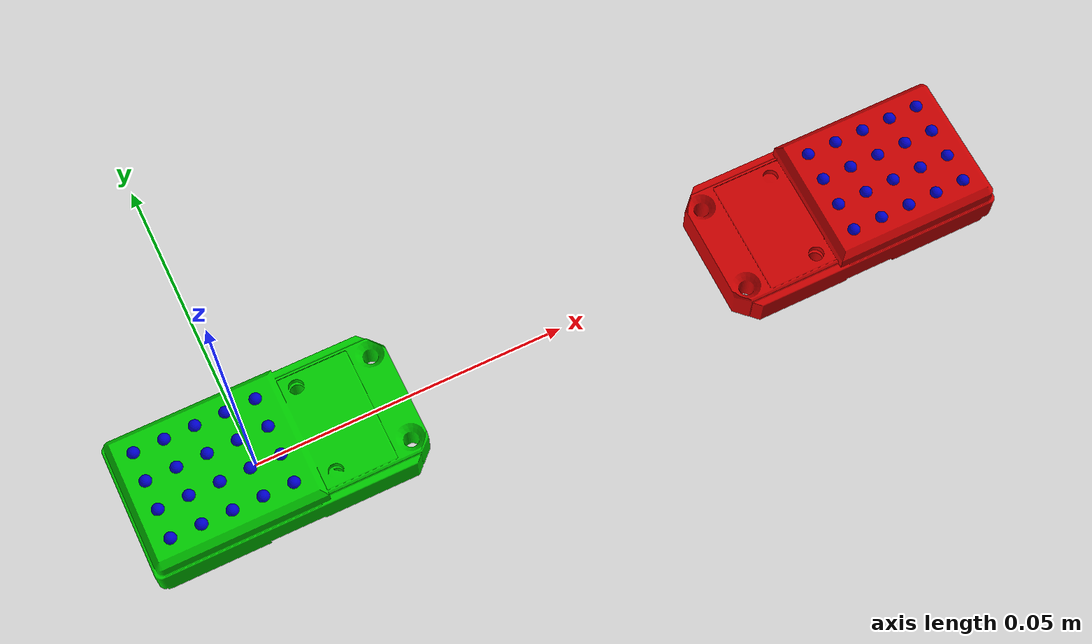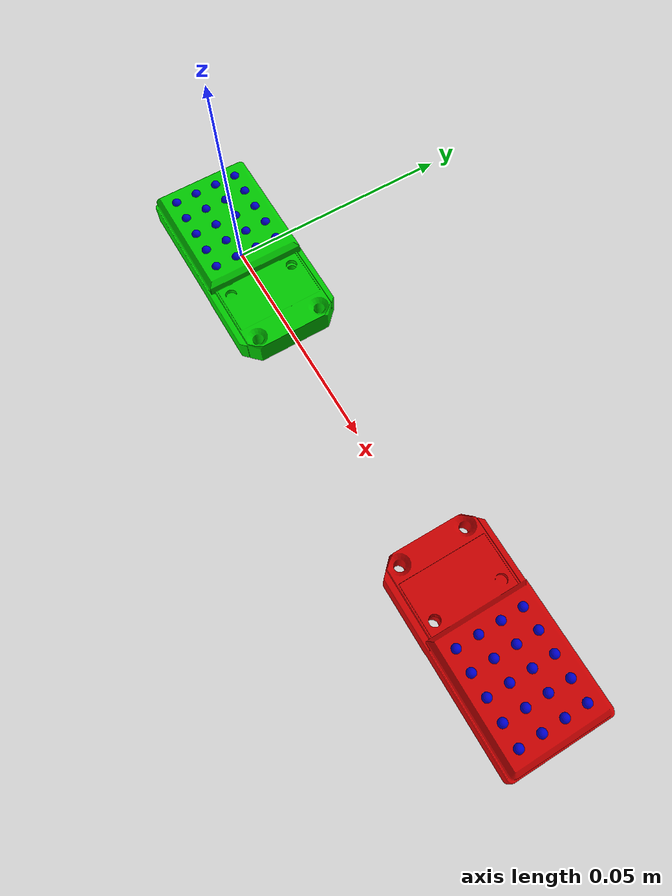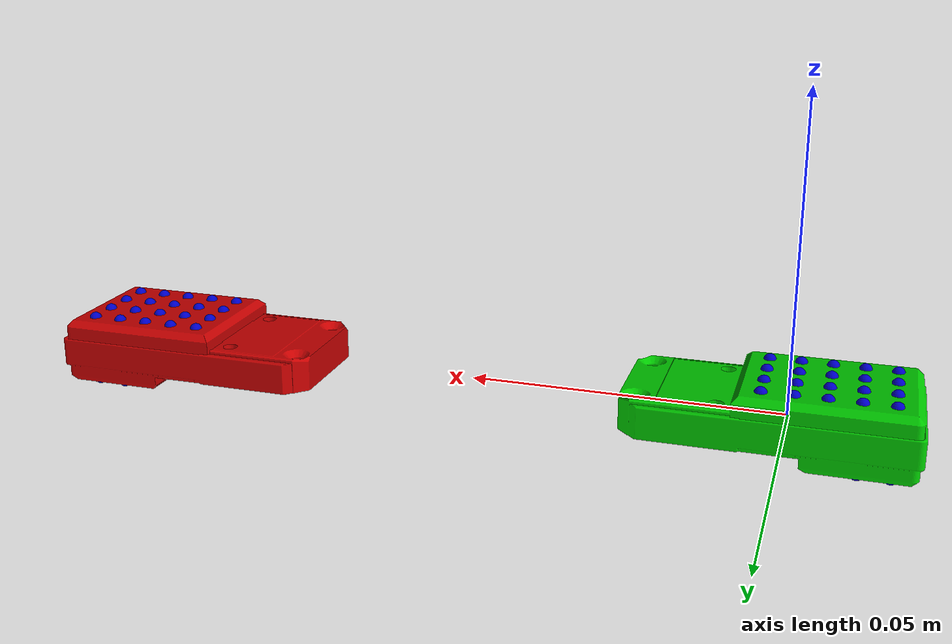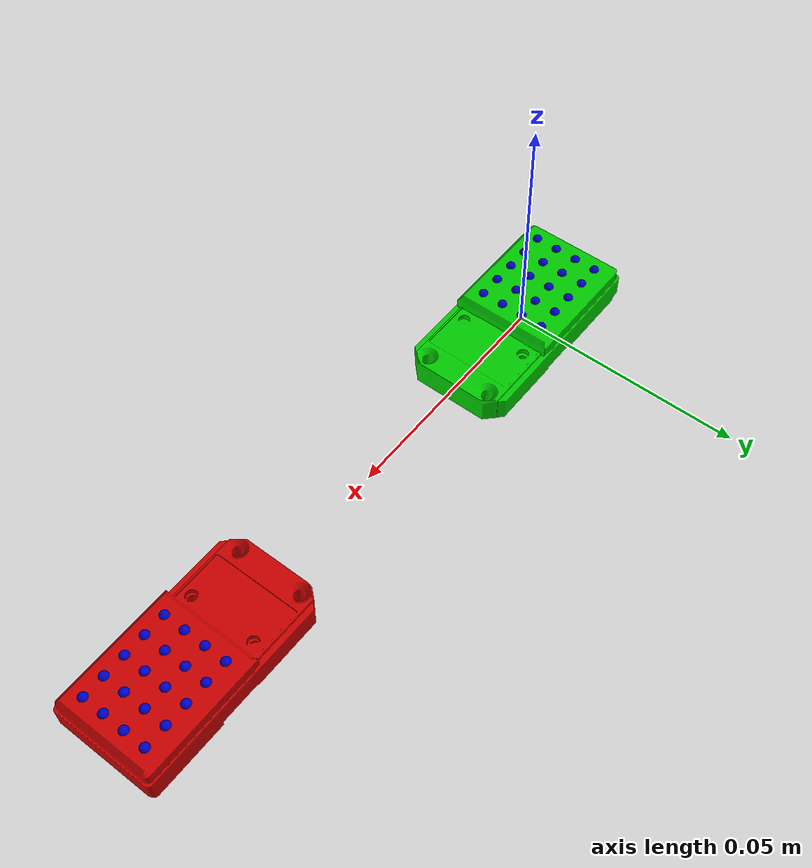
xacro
<?xml version="1.0"?>
<robot xmlns:xacro="http://www.ros.org/wiki/xacro" name="uSPrDS_2modules">
  <xacro:arg name="use_ros2_control" default="false" />
  <xacro:property name="use_ros2_control" value="$(arg use_ros2_control)" />

  <xacro:include filename="$(find xela_models)/urdf/materials.xacro" />
  <xacro:include filename="$(find xela_models)/urdf/taxel_n.xacro" />

  <xacro:include filename="$(find xela_models)/urdf/uSPrDS.xacro" />

	<link name="world" />

	<joint name="fixed" type="fixed">
		<parent link="world" />
		<child link="x_taxel_viz" />
	</joint>

	<link name="x_taxel_viz">
		<visual>
			<origin xyz="0.0 0.0 0.0" rpy="0 0 0"/>
      <geometry>
        <box size="0.001 0.001 0.001"/>
      </geometry>
		</visual>
	</link>

  <xacro:uSPrDS  	sequence="'01'" col="green" parent="x_taxel_viz" taxels="1" x="0" y="0" rz="180" />
  <xacro:uSPrDS  	sequence="'02'" col="red" parent="x_taxel_viz" taxels="1" x="0.1" y="0" />

  <xacro:if value="${use_ros2_control}">
    <ros2_control name="xela_taxel_fake_system" type="system">
      <hardware>
        <plugin>fake_components/GenericSystem</plugin>
      </hardware>
      <joint name="x_taxel_01_uSPrDS_f_01_joint">
        <command_interface name="position"/>
        <state_interface name="position"/>
      </joint>
      <joint name="x_taxel_01_uSPrDS_f_02_joint">
        <command_interface name="position"/>
        <state_interface name="position"/>
      </joint>
      <joint name="x_taxel_01_uSPrDS_f_03_joint">
        <command_interface name="position"/>
        <state_interface name="position"/>
      </joint>
      <joint name="x_taxel_01_uSPrDS_f_04_joint">
        <command_interface name="position"/>
        <state_interface name="position"/>
      </joint>
      <joint name="x_taxel_01_uSPrDS_f_05_joint">
        <command_interface name="position"/>
        <state_interface name="position"/>
      </joint>
      <joint name="x_taxel_01_uSPrDS_f_06_joint">
        <command_interface name="position"/>
        <state_interface name="position"/>
      </joint>
      <joint name="x_taxel_01_uSPrDS_f_07_joint">
        <command_interface name="position"/>
        <state_interface name="position"/>
      </joint>
      <joint name="x_taxel_01_uSPrDS_f_08_joint">
        <command_interface name="position"/>
        <state_interface name="position"/>
      </joint>
      <joint name="x_taxel_01_uSPrDS_f_09_joint">
        <command_interface name="position"/>
        <state_interface name="position"/>
      </joint>
      <joint name="x_taxel_01_uSPrDS_f_10_joint">
        <command_interface name="position"/>
        <state_interface name="position"/>
      </joint>
      <joint name="x_taxel_01_uSPrDS_f_11_joint">
        <command_interface name="position"/>
        <state_interface name="position"/>
      </joint>
      <joint name="x_taxel_01_uSPrDS_f_12_joint">
        <command_interface name="position"/>
        <state_interface name="position"/>
      </joint>
      <joint name="x_taxel_01_uSPrDS_f_13_joint">
        <command_interface name="position"/>
        <state_interface name="position"/>
      </joint>
      <joint name="x_taxel_01_uSPrDS_f_14_joint">
        <command_interface name="position"/>
        <state_interface name="position"/>
      </joint>
      <joint name="x_taxel_01_uSPrDS_f_15_joint">
        <command_interface name="position"/>
        <state_interface name="position"/>
      </joint>
      <joint name="x_taxel_01_uSPrDS_f_16_joint">
        <command_interface name="position"/>
        <state_interface name="position"/>
      </joint>
      <joint name="x_taxel_01_uSPrDS_f_17_joint">
        <command_interface name="position"/>
        <state_interface name="position"/>
      </joint>
      <joint name="x_taxel_01_uSPrDS_f_18_joint">
        <command_interface name="position"/>
        <state_interface name="position"/>
      </joint>
      <joint name="x_taxel_01_uSPrDS_f_19_joint">
        <command_interface name="position"/>
        <state_interface name="position"/>
      </joint>
      <joint name="x_taxel_01_uSPrDS_f_20_joint">
        <command_interface name="position"/>
        <state_interface name="position"/>
      </joint>
      <joint name="x_taxel_01_uSPrDS_r_01_joint">
        <command_interface name="position"/>
        <state_interface name="position"/>
      </joint>
      <joint name="x_taxel_01_uSPrDS_r_02_joint">
        <command_interface name="position"/>
        <state_interface name="position"/>
      </joint>
      <joint name="x_taxel_01_uSPrDS_r_03_joint">
        <command_interface name="position"/>
        <state_interface name="position"/>
      </joint>
      <joint name="x_taxel_01_uSPrDS_r_04_joint">
        <command_interface name="position"/>
        <state_interface name="position"/>
      </joint>
      <joint name="x_taxel_01_uSPrDS_r_05_joint">
        <command_interface name="position"/>
        <state_interface name="position"/>
      </joint>
      <joint name="x_taxel_01_uSPrDS_r_06_joint">
        <command_interface name="position"/>
        <state_interface name="position"/>
      </joint>
      <joint name="x_taxel_01_uSPrDS_r_07_joint">
        <command_interface name="position"/>
        <state_interface name="position"/>
      </joint>
      <joint name="x_taxel_01_uSPrDS_r_08_joint">
        <command_interface name="position"/>
        <state_interface name="position"/>
      </joint>
      <joint name="x_taxel_01_uSPrDS_r_09_joint">
        <command_interface name="position"/>
        <state_interface name="position"/>
      </joint>
      <joint name="x_taxel_01_uSPrDS_r_10_joint">
        <command_interface name="position"/>
        <state_interface name="position"/>
      </joint>
      <joint name="x_taxel_02_uSPrDS_f_01_joint">
        <command_interface name="position"/>
        <state_interface name="position"/>
      </joint>
      <joint name="x_taxel_02_uSPrDS_f_02_joint">
        <command_interface name="position"/>
        <state_interface name="position"/>
      </joint>
      <joint name="x_taxel_02_uSPrDS_f_03_joint">
        <command_interface name="position"/>
        <state_interface name="position"/>
      </joint>
      <joint name="x_taxel_02_uSPrDS_f_04_joint">
        <command_interface name="position"/>
        <state_interface name="position"/>
      </joint>
      <joint name="x_taxel_02_uSPrDS_f_05_joint">
        <command_interface name="position"/>
        <state_interface name="position"/>
      </joint>
      <joint name="x_taxel_02_uSPrDS_f_06_joint">
        <command_interface name="position"/>
        <state_interface name="position"/>
      </joint>
      <joint name="x_taxel_02_uSPrDS_f_07_joint">
        <command_interface name="position"/>
        <state_interface name="position"/>
      </joint>
      <joint name="x_taxel_02_uSPrDS_f_08_joint">
        <command_interface name="position"/>
        <state_interface name="position"/>
      </joint>
      <joint name="x_taxel_02_uSPrDS_f_09_joint">
        <command_interface name="position"/>
        <state_interface name="position"/>
      </joint>
      <joint name="x_taxel_02_uSPrDS_f_10_joint">
        <command_interface name="position"/>
        <state_interface name="position"/>
      </joint>
      <joint name="x_taxel_02_uSPrDS_f_11_joint">
        <command_interface name="position"/>
        <state_interface name="position"/>
      </joint>
      <joint name="x_taxel_02_uSPrDS_f_12_joint">
        <command_interface name="position"/>
        <state_interface name="position"/>
      </joint>
      <joint name="x_taxel_02_uSPrDS_f_13_joint">
        <command_interface name="position"/>
        <state_interface name="position"/>
      </joint>
      <joint name="x_taxel_02_uSPrDS_f_14_joint">
        <command_interface name="position"/>
        <state_interface name="position"/>
      </joint>
      <joint name="x_taxel_02_uSPrDS_f_15_joint">
        <command_interface name="position"/>
        <state_interface name="position"/>
      </joint>
      <joint name="x_taxel_02_uSPrDS_f_16_joint">
        <command_interface name="position"/>
        <state_interface name="position"/>
      </joint>
      <joint name="x_taxel_02_uSPrDS_f_17_joint">
        <command_interface name="position"/>
        <state_interface name="position"/>
      </joint>
      <joint name="x_taxel_02_uSPrDS_f_18_joint">
        <command_interface name="position"/>
        <state_interface name="position"/>
      </joint>
      <joint name="x_taxel_02_uSPrDS_f_19_joint">
        <command_interface name="position"/>
        <state_interface name="position"/>
      </joint>
      <joint name="x_taxel_02_uSPrDS_f_20_joint">
        <command_interface name="position"/>
        <state_interface name="position"/>
      </joint>
      <joint name="x_taxel_02_uSPrDS_r_01_joint">
        <command_interface name="position"/>
        <state_interface name="position"/>
      </joint>
      <joint name="x_taxel_02_uSPrDS_r_02_joint">
        <command_interface name="position"/>
        <state_interface name="position"/>
      </joint>
      <joint name="x_taxel_02_uSPrDS_r_03_joint">
        <command_interface name="position"/>
        <state_interface name="position"/>
      </joint>
      <joint name="x_taxel_02_uSPrDS_r_04_joint">
        <command_interface name="position"/>
        <state_interface name="position"/>
      </joint>
      <joint name="x_taxel_02_uSPrDS_r_05_joint">
        <command_interface name="position"/>
        <state_interface name="position"/>
      </joint>
      <joint name="x_taxel_02_uSPrDS_r_06_joint">
        <command_interface name="position"/>
        <state_interface name="position"/>
      </joint>
      <joint name="x_taxel_02_uSPrDS_r_07_joint">
        <command_interface name="position"/>
        <state_interface name="position"/>
      </joint>
      <joint name="x_taxel_02_uSPrDS_r_08_joint">
        <command_interface name="position"/>
        <state_interface name="position"/>
      </joint>
      <joint name="x_taxel_02_uSPrDS_r_09_joint">
        <command_interface name="position"/>
        <state_interface name="position"/>
      </joint>
      <joint name="x_taxel_02_uSPrDS_r_10_joint">
        <command_interface name="position"/>
        <state_interface name="position"/>
      </joint>
    </ros2_control>
  </xacro:if>
</robot>

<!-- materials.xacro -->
<robot xmlns:xacro="http://www.ros.org/wiki/xacro" name="materials">

  <!-- Rviz colors -->
  <material name="black">
    <color rgba="0.1 0.1 0.1 1.0"/>
  </material>

  <material name="blue">
    <color rgba="0.0 0.0 0.8 1.0"/>
  </material>

  <material name="green">
    <color rgba="0.0 0.8 0.0 1.0"/>
  </material>

  <material name="grey">
    <color rgba="0.2 0.2 0.2 1.0"/>
  </material>

  <material name="orange">
    <color rgba="${255/255} ${108/255} ${10/255} 1.0"/>
  </material>

  <material name="brown">
    <color rgba="${222/255} ${207/255} ${195/255} 1.0"/>
  </material>

  <material name="red">
    <color rgba="0.8 0.0 0.0 1.0"/>
  </material>

  <material name="white">
    <color rgba="1.0 1.0 1.0 1.0"/>
  </material>
</robot>

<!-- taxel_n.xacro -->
<robot xmlns:xacro="http://www.ros.org/wiki/xacro" name="xela_taxel">

  <xacro:macro name="taxel_n" params="sequence parent x:=0.0 y:=0.0 z:=0.0 rx:=0.0 ry:=0.0 rz:=0.0 col:='blue' zmod:=0.0 sensor_collision:=0 sensor_inertial:=0">

    <joint name="${sequence}_joint" type="prismatic">
      <origin xyz="${x} ${y} ${z}" rpy="${radians(rx)} ${radians(ry)} ${radians(rz)}"/>
      <parent link="${parent}"/>
      <child link="${sequence}_link"/>
      <axis xyz="0 0 1"/>
      <limit effort="100.0" lower="${-0.001-zmod}" upper="0.000" velocity="0.5"/>
    </joint>

    <link name="${sequence}_link">
      <visual>
        <geometry>
          <sphere radius="0.001"/>
        </geometry>
        <origin xyz="0.0 0.0 0.0" rpy="0 0 0"/>
        <material name="${col}"/>
      </visual>
      <xacro:if value="${sensor_collision}">
        <collision>
          <origin xyz="0.0 0.0 0.0" rpy="0 0 0"/>
          <geometry>
            <sphere radius="0.001"/>
          </geometry>
        </collision>
      </xacro:if>
      <xacro:if value="${sensor_inertial}">
        <inertial>
          <mass value="0.0001" />
          <origin xyz="0.0 0.0 0.0" rpy="0 0 0"/>
          <inertia ixx="0.0000006666667" ixy="0.0" ixz="0.0" iyy="0.0000006666667" iyz="0.0" izz="0.0000006666667"/>
        </inertial>
      </xacro:if>

    </link>

    <gazebo reference="${sequence}_link">
        <material>Gazebo/Blue</material>
    </gazebo>

  </xacro:macro>

  <xacro:macro name="taxelntest" params="sequence parent x:=0.0 y:=0.0 z:=0.0 rx:=0.0 ry:=0.0 rz:=0.0">
    <xacro:taxel_n sequence="${sequence}A"  x="${x}" y="${y}" z="${z}" rx="${rx}" ry="${ry}" rz="${rz}" parent="${parent}" />
    <xacro:taxel_n sequence="${sequence}B"  x="${x}" y="${y}" z="${z}" rx="${rx}" ry="${ry}" rz="${rz}" parent="${parent}" col="red" zmod="-0.001" />
  </xacro:macro>

</robot>

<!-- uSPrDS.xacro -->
<robot name="uSPrDS" xmlns:xacro="http://www.ros.org/wiki/xacro">

  <xacro:arg name="sensor_prefix" default="x_taxel_" />
  <xacro:arg name="base_prefix" default="x_base_" />

  <!-- uSPr eF2 model -->
  <xacro:macro name="uSPrDS" params="sequence parent x:=0.0 y:=0.0 z:=0.0 rx:=0.0 ry:=0.0 rz:=0.0 col:='blue' body:=1 taxels:=1 skipinertia:=0 xoff=-0.0085 yoff=0.012 zoff=0.00595 rzoff=-0.00495 txstep=0.0048 tystep=0.0048 standalone:=0">
    <xacro:if value="${standalone == 1}">
      <xacro:include filename="$(find xela_models)/urdf/materials.xacro" />
      <xacro:include filename="$(find xela_models)/urdf/taxel_n.xacro" />
    </xacro:if>

   <xacro:property name="initial_positions_file" default="$(arg initial_positions_file)"/>

    <joint name="$(arg base_prefix)${sequence}_uSPrDS_fixed" type="fixed">
      <origin xyz="${x} ${y} ${z}" rpy="${radians(rx)} ${radians(ry)} ${radians(rz)}"/>
      <parent link="${parent}" />
      <child link="$(arg base_prefix)${sequence}_uSPrDS_link" />
    </joint>
    <link name="$(arg base_prefix)${sequence}_uSPrDS_link">
      <collision>
        <origin xyz="0 0 0" rpy="1.57 1.57 0" />
        <geometry>
          <mesh filename="package://xela_models/mesh/uSPaDS.stl" scale="0.001 0.001 0.001"/>
        </geometry>
      </collision>
      <xacro:if value="${body == 1}">
        <visual>
          <origin xyz="0 0 0" rpy="1.57 0 0" />
          <geometry>
            <mesh filename="package://xela_models/mesh/uSPaDS.stl" scale="0.001 0.001 0.001"/>
          </geometry>
          <material name="${col}"/>
        </visual>
        <xacro:unless value="${skipinertia == 1}">
          <inertial>
            <origin xyz="0.000802 0.000964 0.000000" rpy="0 0 0"/>
            <mass value="0.021331"/>
            <inertia ixx="9.944032e-07" ixy="4.339981e-09" ixz="1.302310e-10"
                    iyy="3.942455e-06" iyz="-3.681437e-10" izz="3.243939e-06"/>
          </inertial>
        </xacro:unless>
      </xacro:if>
    </link>

    <gazebo reference="$(arg base_prefix)${sequence}_uSPrDS_link">
      <material>Gazebo/Red</material>
    </gazebo>

    <xacro:if value="${taxels == 1}">
      <xacro:taxel_n sequence="$(arg sensor_prefix)${sequence}_uSPrDS_f_01" x="${5*txstep+xoff}" y="${4*tystep-yoff}" z="${zoff}" parent="$(arg base_prefix)${sequence}_uSPrDS_link" />
      <xacro:taxel_n sequence="$(arg sensor_prefix)${sequence}_uSPrDS_f_02" x="${5*txstep+xoff}" y="${3*tystep-yoff}" z="${zoff}" parent="$(arg base_prefix)${sequence}_uSPrDS_link" />
      <xacro:taxel_n sequence="$(arg sensor_prefix)${sequence}_uSPrDS_f_03" x="${5*txstep+xoff}" y="${2*tystep-yoff}" z="${zoff}" parent="$(arg base_prefix)${sequence}_uSPrDS_link" />
      <xacro:taxel_n sequence="$(arg sensor_prefix)${sequence}_uSPrDS_f_04" x="${5*txstep+xoff}" y="${1*tystep-yoff}" z="${zoff}" parent="$(arg base_prefix)${sequence}_uSPrDS_link" />
      <xacro:taxel_n sequence="$(arg sensor_prefix)${sequence}_uSPrDS_f_05" x="${4*txstep+xoff}" y="${4*tystep-yoff}" z="${zoff}" parent="$(arg base_prefix)${sequence}_uSPrDS_link" />
      <xacro:taxel_n sequence="$(arg sensor_prefix)${sequence}_uSPrDS_f_06" x="${4*txstep+xoff}" y="${3*tystep-yoff}" z="${zoff}" parent="$(arg base_prefix)${sequence}_uSPrDS_link" />
      <xacro:taxel_n sequence="$(arg sensor_prefix)${sequence}_uSPrDS_f_07" x="${4*txstep+xoff}" y="${2*tystep-yoff}" z="${zoff}" parent="$(arg base_prefix)${sequence}_uSPrDS_link" />
      <xacro:taxel_n sequence="$(arg sensor_prefix)${sequence}_uSPrDS_f_08" x="${4*txstep+xoff}" y="${1*tystep-yoff}" z="${zoff}" parent="$(arg base_prefix)${sequence}_uSPrDS_link" />
      <xacro:taxel_n sequence="$(arg sensor_prefix)${sequence}_uSPrDS_f_09" x="${3*txstep+xoff}" y="${4*tystep-yoff}" z="${zoff}" parent="$(arg base_prefix)${sequence}_uSPrDS_link" />
      <xacro:taxel_n sequence="$(arg sensor_prefix)${sequence}_uSPrDS_f_10" x="${3*txstep+xoff}" y="${3*tystep-yoff}" z="${zoff}" parent="$(arg base_prefix)${sequence}_uSPrDS_link" />
      <xacro:taxel_n sequence="$(arg sensor_prefix)${sequence}_uSPrDS_f_11" x="${3*txstep+xoff}" y="${2*tystep-yoff}" z="${zoff}" parent="$(arg base_prefix)${sequence}_uSPrDS_link" />
      <xacro:taxel_n sequence="$(arg sensor_prefix)${sequence}_uSPrDS_f_12" x="${3*txstep+xoff}" y="${1*tystep-yoff}" z="${zoff}" parent="$(arg base_prefix)${sequence}_uSPrDS_link" />
      <xacro:taxel_n sequence="$(arg sensor_prefix)${sequence}_uSPrDS_f_13" x="${2*txstep+xoff}" y="${4*tystep-yoff}" z="${zoff}" parent="$(arg base_prefix)${sequence}_uSPrDS_link" />
      <xacro:taxel_n sequence="$(arg sensor_prefix)${sequence}_uSPrDS_f_14" x="${2*txstep+xoff}" y="${3*tystep-yoff}" z="${zoff}" parent="$(arg base_prefix)${sequence}_uSPrDS_link" />
      <xacro:taxel_n sequence="$(arg sensor_prefix)${sequence}_uSPrDS_f_15" x="${2*txstep+xoff}" y="${2*tystep-yoff}" z="${zoff}" parent="$(arg base_prefix)${sequence}_uSPrDS_link" />
      <xacro:taxel_n sequence="$(arg sensor_prefix)${sequence}_uSPrDS_f_16" x="${2*txstep+xoff}" y="${1*tystep-yoff}" z="${zoff}" parent="$(arg base_prefix)${sequence}_uSPrDS_link" />
      <xacro:taxel_n sequence="$(arg sensor_prefix)${sequence}_uSPrDS_f_17" x="${1*txstep+xoff}" y="${4*tystep-yoff}" z="${zoff}" parent="$(arg base_prefix)${sequence}_uSPrDS_link" />
      <xacro:taxel_n sequence="$(arg sensor_prefix)${sequence}_uSPrDS_f_18" x="${1*txstep+xoff}" y="${3*tystep-yoff}" z="${zoff}" parent="$(arg base_prefix)${sequence}_uSPrDS_link" />
      <xacro:taxel_n sequence="$(arg sensor_prefix)${sequence}_uSPrDS_f_19" x="${1*txstep+xoff}" y="${2*tystep-yoff}" z="${zoff}" parent="$(arg base_prefix)${sequence}_uSPrDS_link" />
      <xacro:taxel_n sequence="$(arg sensor_prefix)${sequence}_uSPrDS_f_20" x="${1*txstep+xoff}" y="${1*tystep-yoff}" z="${zoff}" parent="$(arg base_prefix)${sequence}_uSPrDS_link" />

      <xacro:taxel_n sequence="$(arg sensor_prefix)${sequence}_uSPrDS_r_01" x="${3*txstep+xoff+txstep*2}" y="${4*tystep-yoff}" z="${rzoff}" rx="180" parent="$(arg base_prefix)${sequence}_uSPrDS_link" />
      <xacro:taxel_n sequence="$(arg sensor_prefix)${sequence}_uSPrDS_r_02" x="${3*txstep+xoff+txstep*2}" y="${3*tystep-yoff}" z="${rzoff}" rx="180" parent="$(arg base_prefix)${sequence}_uSPrDS_link" />
      <xacro:taxel_n sequence="$(arg sensor_prefix)${sequence}_uSPrDS_r_03" x="${3*txstep+xoff+txstep*2}" y="${2*tystep-yoff}" z="${rzoff}" rx="180" parent="$(arg base_prefix)${sequence}_uSPrDS_link" />
      <xacro:taxel_n sequence="$(arg sensor_prefix)${sequence}_uSPrDS_r_04" x="${3*txstep+xoff+txstep*2}" y="${1*tystep-yoff}" z="${rzoff}" rx="180" parent="$(arg base_prefix)${sequence}_uSPrDS_link" />
      <xacro:taxel_n sequence="$(arg sensor_prefix)${sequence}_uSPrDS_r_05" x="${2*txstep+xoff+txstep*2}" y="${4*tystep-yoff}" z="${rzoff}" rx="180" parent="$(arg base_prefix)${sequence}_uSPrDS_link" />
      <xacro:taxel_n sequence="$(arg sensor_prefix)${sequence}_uSPrDS_r_06" x="${2*txstep+xoff+txstep*2}" y="${3*tystep-yoff}" z="${rzoff}" rx="180" parent="$(arg base_prefix)${sequence}_uSPrDS_link" />
      <xacro:taxel_n sequence="$(arg sensor_prefix)${sequence}_uSPrDS_r_07" x="${2*txstep+xoff+txstep*2}" y="${2*tystep-yoff}" z="${rzoff}" rx="180" parent="$(arg base_prefix)${sequence}_uSPrDS_link" />
      <xacro:taxel_n sequence="$(arg sensor_prefix)${sequence}_uSPrDS_r_08" x="${2*txstep+xoff+txstep*2}" y="${1*tystep-yoff}" z="${rzoff}" rx="180" parent="$(arg base_prefix)${sequence}_uSPrDS_link" />
      <xacro:taxel_n sequence="$(arg sensor_prefix)${sequence}_uSPrDS_r_09" x="${1*txstep+xoff+txstep*2}" y="${3*tystep-yoff}" z="${rzoff}" rx="180" parent="$(arg base_prefix)${sequence}_uSPrDS_link" />
      <xacro:taxel_n sequence="$(arg sensor_prefix)${sequence}_uSPrDS_r_10" x="${1*txstep+xoff+txstep*2}" y="${2*tystep-yoff}" z="${rzoff}" rx="180" parent="$(arg base_prefix)${sequence}_uSPrDS_link" />
    </xacro:if>
  </xacro:macro>

</robot>
